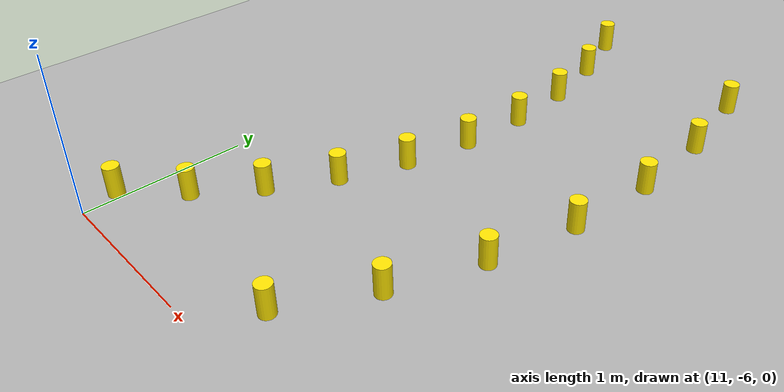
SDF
<sdf version="1.7">
 <world name="cone_lane">
  <model name="ground_plane">
   <static>true</static>
   <link name="link">
    <collision name="collision">
     <geometry><plane><normal>0 0 1</normal><size>150 150</size></plane></geometry>
     <surface><friction><ode><mu>1.0</mu></ode></friction></surface>
    </collision>
    <visual name="visual">
     <geometry><plane><normal>0 0 1</normal><size>100 100</size></plane></geometry>
     <material>
      <ambient>0.55 0.55 0.55 1</ambient>
      <diffuse>0.70 0.70 0.70 1</diffuse>
      <specular>0.05 0.05 0.05 1</specular>
     </material>
    </visual>
   </link>
  </model>
  <model name="cone_L028">
   <static>true</static>
   <pose>12.841 -2.382 0.1 0 0 0</pose>
   <link name="link">
    <visual name="v">
     <geometry><cylinder><radius>0.05</radius><length>0.2</length></cylinder></geometry>
     <material>
      <ambient>0.9 0.8 0.0 1</ambient>
      <diffuse>1.0 0.9 0.0 1</diffuse>
      <specular>0.2 0.2 0.0 1</specular>
     </material>
    </visual>
    <collision name="c">
     <geometry><cylinder><radius>0.05</radius><length>0.2</length></cylinder></geometry>
    </collision>
   </link>
  </model>
  <model name="cone_L029">
   <static>true</static>
   <pose>12.961 -2.941 0.1 0 0 0</pose>
   <link name="link">
    <visual name="v">
     <geometry><cylinder><radius>0.05</radius><length>0.2</length></cylinder></geometry>
     <material>
      <ambient>0.9 0.8 0.0 1</ambient>
      <diffuse>1.0 0.9 0.0 1</diffuse>
      <specular>0.2 0.2 0.0 1</specular>
     </material>
    </visual>
    <collision name="c">
     <geometry><cylinder><radius>0.05</radius><length>0.2</length></cylinder></geometry>
    </collision>
   </link>
  </model>
  <model name="cone_L030">
   <static>true</static>
   <pose>13.000 -3.511 0.1 0 0 0</pose>
   <link name="link">
    <visual name="v">
     <geometry><cylinder><radius>0.05</radius><length>0.2</length></cylinder></geometry>
     <material>
      <ambient>0.9 0.8 0.0 1</ambient>
      <diffuse>1.0 0.9 0.0 1</diffuse>
      <specular>0.2 0.2 0.0 1</specular>
     </material>
    </visual>
    <collision name="c">
     <geometry><cylinder><radius>0.05</radius><length>0.2</length></cylinder></geometry>
    </collision>
   </link>
  </model>
  <model name="cone_L031">
   <static>true</static>
   <pose>12.957 -4.082 0.1 0 0 0</pose>
   <link name="link">
    <visual name="v">
     <geometry><cylinder><radius>0.05</radius><length>0.2</length></cylinder></geometry>
     <material>
      <ambient>0.9 0.8 0.0 1</ambient>
      <diffuse>1.0 0.9 0.0 1</diffuse>
      <specular>0.2 0.2 0.0 1</specular>
     </material>
    </visual>
    <collision name="c">
     <geometry><cylinder><radius>0.05</radius><length>0.2</length></cylinder></geometry>
    </collision>
   </link>
  </model>
  <model name="cone_L032">
   <static>true</static>
   <pose>12.834 -4.640 0.1 0 0 0</pose>
   <link name="link">
    <visual name="v">
     <geometry><cylinder><radius>0.05</radius><length>0.2</length></cylinder></geometry>
     <material>
      <ambient>0.9 0.8 0.0 1</ambient>
      <diffuse>1.0 0.9 0.0 1</diffuse>
      <specular>0.2 0.2 0.0 1</specular>
     </material>
    </visual>
    <collision name="c">
     <geometry><cylinder><radius>0.05</radius><length>0.2</length></cylinder></geometry>
    </collision>
   </link>
  </model>
  <model name="cone_L033">
   <static>true</static>
   <pose>12.632 -5.175 0.1 0 0 0</pose>
   <link name="link">
    <visual name="v">
     <geometry><cylinder><radius>0.05</radius><length>0.2</length></cylinder></geometry>
     <material>
      <ambient>0.9 0.8 0.0 1</ambient>
      <diffuse>1.0 0.9 0.0 1</diffuse>
      <specular>0.2 0.2 0.0 1</specular>
     </material>
    </visual>
    <collision name="c">
     <geometry><cylinder><radius>0.05</radius><length>0.2</length></cylinder></geometry>
    </collision>
   </link>
  </model>
  <model name="cone_L034">
   <static>true</static>
   <pose>12.357 -5.676 0.1 0 0 0</pose>
   <link name="link">
    <visual name="v">
     <geometry><cylinder><radius>0.05</radius><length>0.2</length></cylinder></geometry>
     <material>
      <ambient>0.9 0.8 0.0 1</ambient>
      <diffuse>1.0 0.9 0.0 1</diffuse>
      <specular>0.2 0.2 0.0 1</specular>
     </material>
    </visual>
    <collision name="c">
     <geometry><cylinder><radius>0.05</radius><length>0.2</length></cylinder></geometry>
    </collision>
   </link>
  </model>
  <model name="cone_R027">
   <static>true</static>
   <pose>11.731 -2.259 0.1 0 0 0</pose>
   <link name="link">
    <visual name="v">
     <geometry><cylinder><radius>0.05</radius><length>0.2</length></cylinder></geometry>
     <material>
      <ambient>0.9 0.8 0.0 1</ambient>
      <diffuse>1.0 0.9 0.0 1</diffuse>
      <specular>0.2 0.2 0.0 1</specular>
     </material>
    </visual>
    <collision name="c">
     <geometry><cylinder><radius>0.05</radius><length>0.2</length></cylinder></geometry>
    </collision>
   </link>
  </model>
  <model name="cone_R028">
   <static>true</static>
   <pose>11.880 -2.662 0.1 0 0 0</pose>
   <link name="link">
    <visual name="v">
     <geometry><cylinder><radius>0.05</radius><length>0.2</length></cylinder></geometry>
     <material>
      <ambient>0.9 0.8 0.0 1</ambient>
      <diffuse>1.0 0.9 0.0 1</diffuse>
      <specular>0.2 0.2 0.0 1</specular>
     </material>
    </visual>
    <collision name="c">
     <geometry><cylinder><radius>0.05</radius><length>0.2</length></cylinder></geometry>
    </collision>
   </link>
  </model>
  <model name="cone_R029">
   <static>true</static>
   <pose>11.971 -3.081 0.1 0 0 0</pose>
   <link name="link">
    <visual name="v">
     <geometry><cylinder><radius>0.05</radius><length>0.2</length></cylinder></geometry>
     <material>
      <ambient>0.9 0.8 0.0 1</ambient>
      <diffuse>1.0 0.9 0.0 1</diffuse>
      <specular>0.2 0.2 0.0 1</specular>
     </material>
    </visual>
    <collision name="c">
     <geometry><cylinder><radius>0.05</radius><length>0.2</length></cylinder></geometry>
    </collision>
   </link>
  </model>
  <model name="cone_R030">
   <static>true</static>
   <pose>12.000 -3.509 0.1 0 0 0</pose>
   <link name="link">
    <visual name="v">
     <geometry><cylinder><radius>0.05</radius><length>0.2</length></cylinder></geometry>
     <material>
      <ambient>0.9 0.8 0.0 1</ambient>
      <diffuse>1.0 0.9 0.0 1</diffuse>
      <specular>0.2 0.2 0.0 1</specular>
     </material>
    </visual>
    <collision name="c">
     <geometry><cylinder><radius>0.05</radius><length>0.2</length></cylinder></geometry>
    </collision>
   </link>
  </model>
  <model name="cone_R031">
   <static>true</static>
   <pose>11.968 -3.936 0.1 0 0 0</pose>
   <link name="link">
    <visual name="v">
     <geometry><cylinder><radius>0.05</radius><length>0.2</length></cylinder></geometry>
     <material>
      <ambient>0.9 0.8 0.0 1</ambient>
      <diffuse>1.0 0.9 0.0 1</diffuse>
      <specular>0.2 0.2 0.0 1</specular>
     </material>
    </visual>
    <collision name="c">
     <geometry><cylinder><radius>0.05</radius><length>0.2</length></cylinder></geometry>
    </collision>
   </link>
  </model>
  <model name="cone_R032">
   <static>true</static>
   <pose>11.876 -4.355 0.1 0 0 0</pose>
   <link name="link">
    <visual name="v">
     <geometry><cylinder><radius>0.05</radius><length>0.2</length></cylinder></geometry>
     <material>
      <ambient>0.9 0.8 0.0 1</ambient>
      <diffuse>1.0 0.9 0.0 1</diffuse>
      <specular>0.2 0.2 0.0 1</specular>
     </material>
    </visual>
    <collision name="c">
     <geometry><cylinder><radius>0.05</radius><length>0.2</length></cylinder></geometry>
    </collision>
   </link>
  </model>
  <model name="cone_R033">
   <static>true</static>
   <pose>11.724 -4.756 0.1 0 0 0</pose>
   <link name="link">
    <visual name="v">
     <geometry><cylinder><radius>0.05</radius><length>0.2</length></cylinder></geometry>
     <material>
      <ambient>0.9 0.8 0.0 1</ambient>
      <diffuse>1.0 0.9 0.0 1</diffuse>
      <specular>0.2 0.2 0.0 1</specular>
     </material>
    </visual>
    <collision name="c">
     <geometry><cylinder><radius>0.05</radius><length>0.2</length></cylinder></geometry>
    </collision>
   </link>
  </model>
  <model name="cone_R034">
   <static>true</static>
   <pose>11.517 -5.132 0.1 0 0 0</pose>
   <link name="link">
    <visual name="v">
     <geometry><cylinder><radius>0.05</radius><length>0.2</length></cylinder></geometry>
     <material>
      <ambient>0.9 0.8 0.0 1</ambient>
      <diffuse>1.0 0.9 0.0 1</diffuse>
      <specular>0.2 0.2 0.0 1</specular>
     </material>
    </visual>
    <collision name="c">
     <geometry><cylinder><radius>0.05</radius><length>0.2</length></cylinder></geometry>
    </collision>
   </link>
  </model>
  <model name="cone_R035">
   <static>true</static>
   <pose>11.259 -5.474 0.1 0 0 0</pose>
   <link name="link">
    <visual name="v">
     <geometry><cylinder><radius>0.05</radius><length>0.2</length></cylinder></geometry>
     <material>
      <ambient>0.9 0.8 0.0 1</ambient>
      <diffuse>1.0 0.9 0.0 1</diffuse>
      <specular>0.2 0.2 0.0 1</specular>
     </material>
    </visual>
    <collision name="c">
     <geometry><cylinder><radius>0.05</radius><length>0.2</length></cylinder></geometry>
    </collision>
   </link>
  </model>
  <model name="cone_R036">
   <static>true</static>
   <pose>10.955 -5.776 0.1 0 0 0</pose>
   <link name="link">
    <visual name="v">
     <geometry><cylinder><radius>0.05</radius><length>0.2</length></cylinder></geometry>
     <material>
      <ambient>0.9 0.8 0.0 1</ambient>
      <diffuse>1.0 0.9 0.0 1</diffuse>
      <specular>0.2 0.2 0.0 1</specular>
     </material>
    </visual>
    <collision name="c">
     <geometry><cylinder><radius>0.05</radius><length>0.2</length></cylinder></geometry>
    </collision>
   </link>
  </model>
 </world>
</sdf>
